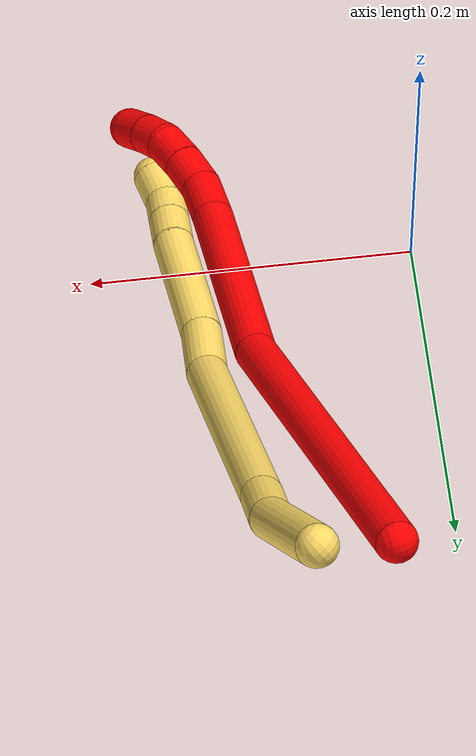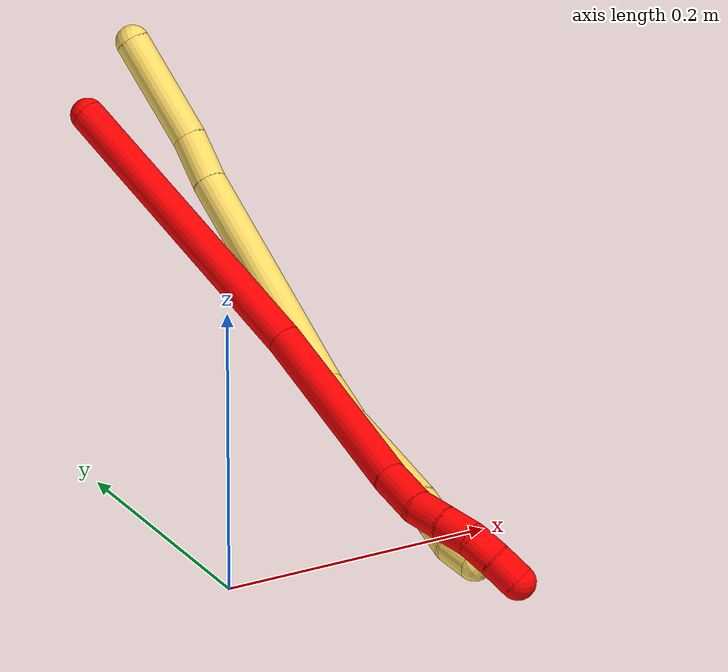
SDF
<sdf version="1.7">
 <world name="default">
  <model name="2">
   <static>0</static>
   <link name="2">
    <collision name="collision-cylinder-e_1_1_4">
     <pose>-0.00589 -0.116989 0.013215 1.45831 -0.049987 -0.04466</pose>
     <geometry><cylinder><radius>0.0125</radius><length>0.235761</length></cylinder></geometry>
     <surface>
      <friction><ode><mu>1.16</mu><mu2>1.16</mu2><slip1>0</slip1><slip2>0</slip2></ode></friction>
      <contact><ode><kp>1e+06</kp><kd>1</kd><max_vel>0</max_vel><min_depth>0.001</min_depth></ode></contact>
     </surface>
    </collision>
    <visual name="visual-cylinder-e_1_1_4">
     <pose>-0.00589 -0.116989 0.013215 1.45831 -0.049987 -0.04466</pose>
     <geometry><cylinder><radius>0.0125</radius><length>0.235761</length></cylinder></geometry>
     <material><ambient>1 0 0 1</ambient></material>
    </visual>
    <collision name="collision-cylinder-e_2_4_5">
     <pose>-0.022386 -0.304439 0.022147 1.63152 -0.149125 -0.158429</pose>
     <geometry><cylinder><radius>0.0125</radius><length>0.142766</length></cylinder></geometry>
     <surface>
      <friction><ode><mu>1.16</mu><mu2>1.16</mu2><slip1>0</slip1><slip2>0</slip2></ode></friction>
      <contact><ode><kp>1e+06</kp><kd>1</kd><max_vel>0</max_vel><min_depth>0.001</min_depth></ode></contact>
     </surface>
    </collision>
    <visual name="visual-cylinder-e_2_4_5">
     <pose>-0.022386 -0.304439 0.022147 1.63152 -0.149125 -0.158429</pose>
     <geometry><cylinder><radius>0.0125</radius><length>0.142766</length></cylinder></geometry>
     <material><ambient>1 0 0 1</ambient></material>
    </visual>
    <collision name="collision-cylinder-e_3_5_6">
     <pose>-0.03647 -0.39064 0.017631 1.58551 -0.217494 -0.220693</pose>
     <geometry><cylinder><radius>0.0125</radius><length>0.032244</length></cylinder></geometry>
     <surface>
      <friction><ode><mu>1.16</mu><mu2>1.16</mu2><slip1>0</slip1><slip2>0</slip2></ode></friction>
      <contact><ode><kp>1e+06</kp><kd>1</kd><max_vel>0</max_vel><min_depth>0.001</min_depth></ode></contact>
     </surface>
    </collision>
    <visual name="visual-cylinder-e_3_5_6">
     <pose>-0.03647 -0.39064 0.017631 1.58551 -0.217494 -0.220693</pose>
     <geometry><cylinder><radius>0.0125</radius><length>0.032244</length></cylinder></geometry>
     <material><ambient>1 0 0 1</ambient></material>
    </visual>
    <collision name="collision-cylinder-e_4_6_7">
     <pose>-0.044038 -0.417342 0.019831 1.35249 -0.349249 -0.281278</pose>
     <geometry><cylinder><radius>0.0125</radius><length>0.023898</length></cylinder></geometry>
     <surface>
      <friction><ode><mu>1.16</mu><mu2>1.16</mu2><slip1>0</slip1><slip2>0</slip2></ode></friction>
      <contact><ode><kp>1e+06</kp><kd>1</kd><max_vel>0</max_vel><min_depth>0.001</min_depth></ode></contact>
     </surface>
    </collision>
    <visual name="visual-cylinder-e_4_6_7">
     <pose>-0.044038 -0.417342 0.019831 1.35249 -0.349249 -0.281278</pose>
     <geometry><cylinder><radius>0.0125</radius><length>0.023898</length></cylinder></geometry>
     <material><ambient>1 0 0 1</ambient></material>
    </visual>
    <collision name="collision-cylinder-e_5_7_8">
     <pose>-0.051364 -0.438868 0.025343 1.28714 -0.286072 -0.215226</pose>
     <geometry><cylinder><radius>0.0125</radius><length>0.022941</length></cylinder></geometry>
     <surface>
      <friction><ode><mu>1.16</mu><mu2>1.16</mu2><slip1>0</slip1><slip2>0</slip2></ode></friction>
      <contact><ode><kp>1e+06</kp><kd>1</kd><max_vel>0</max_vel><min_depth>0.001</min_depth></ode></contact>
     </surface>
    </collision>
    <visual name="visual-cylinder-e_5_7_8">
     <pose>-0.051364 -0.438868 0.025343 1.28714 -0.286072 -0.215226</pose>
     <geometry><cylinder><radius>0.0125</radius><length>0.022941</length></cylinder></geometry>
     <material><ambient>1 0 0 1</ambient></material>
    </visual>
    <collision name="collision-cylinder-e_6_8_9">
     <pose>-0.054424 -0.459114 0.032149 1.20335 0.017048 0.011705</pose>
     <geometry><cylinder><radius>0.0125</radius><length>0.020751</length></cylinder></geometry>
     <surface>
      <friction><ode><mu>1.16</mu><mu2>1.16</mu2><slip1>0</slip1><slip2>0</slip2></ode></friction>
      <contact><ode><kp>1e+06</kp><kd>1</kd><max_vel>0</max_vel><min_depth>0.001</min_depth></ode></contact>
     </surface>
    </collision>
    <visual name="visual-cylinder-e_6_8_9">
     <pose>-0.054424 -0.459114 0.032149 1.20335 0.017048 0.011705</pose>
     <geometry><cylinder><radius>0.0125</radius><length>0.020751</length></cylinder></geometry>
     <material><ambient>1 0 0 1</ambient></material>
    </visual>
    <collision name="collision-cylinder-e_7_9_2">
     <pose>-0.053121 -0.47876 0.039938 1.18373 0.104206 0.070089</pose>
     <geometry><cylinder><radius>0.0125</radius><length>0.021639</length></cylinder></geometry>
     <surface>
      <friction><ode><mu>1.16</mu><mu2>1.16</mu2><slip1>0</slip1><slip2>0</slip2></ode></friction>
      <contact><ode><kp>1e+06</kp><kd>1</kd><max_vel>0</max_vel><min_depth>0.001</min_depth></ode></contact>
     </surface>
    </collision>
    <visual name="visual-cylinder-e_7_9_2">
     <pose>-0.053121 -0.47876 0.039938 1.18373 0.104206 0.070089</pose>
     <geometry><cylinder><radius>0.0125</radius><length>0.021639</length></cylinder></geometry>
     <material><ambient>1 0 0 1</ambient></material>
    </visual>
    <collision name="collision-sphere-2">
     <pose>-0.051996 -0.488725 0.043999 0 -0 0</pose>
     <geometry><sphere><radius>0.0125</radius></sphere></geometry>
     <surface>
      <friction><ode><mu>1.16</mu><mu2>1.16</mu2><slip1>0</slip1><slip2>0</slip2></ode></friction>
      <contact><ode><kp>1e+06</kp><kd>1</kd><max_vel>0</max_vel><min_depth>0.001</min_depth></ode></contact>
     </surface>
    </collision>
    <visual name="visual-sphere-2">
     <pose>-0.051996 -0.488725 0.043999 0 -0 0</pose>
     <geometry><sphere><radius>0.0125</radius></sphere></geometry>
     <material><ambient>1 0 0 1</ambient></material>
    </visual>
    <collision name="collision-sphere-9">
     <pose>-0.054247 -0.468795 0.035876 0 -0 0</pose>
     <geometry><sphere><radius>0.0125</radius></sphere></geometry>
     <surface>
      <friction><ode><mu>1.16</mu><mu2>1.16</mu2><slip1>0</slip1><slip2>0</slip2></ode></friction>
      <contact><ode><kp>1e+06</kp><kd>1</kd><max_vel>0</max_vel><min_depth>0.001</min_depth></ode></contact>
     </surface>
    </collision>
    <visual name="visual-sphere-9">
     <pose>-0.054247 -0.468795 0.035876 0 -0 0</pose>
     <geometry><sphere><radius>0.0125</radius></sphere></geometry>
     <material><ambient>1 0 0 1</ambient></material>
    </visual>
    <collision name="collision-sphere-4">
     <pose>-0.01178 -0.233978 0.026431 0 -0 0</pose>
     <geometry><sphere><radius>0.0125</radius></sphere></geometry>
     <surface>
      <friction><ode><mu>1.16</mu><mu2>1.16</mu2><slip1>0</slip1><slip2>0</slip2></ode></friction>
      <contact><ode><kp>1e+06</kp><kd>1</kd><max_vel>0</max_vel><min_depth>0.001</min_depth></ode></contact>
     </surface>
    </collision>
    <visual name="visual-sphere-4">
     <pose>-0.01178 -0.233978 0.026431 0 -0 0</pose>
     <geometry><sphere><radius>0.0125</radius></sphere></geometry>
     <material><ambient>1 0 0 1</ambient></material>
    </visual>
    <collision name="collision-sphere-1">
     <geometry><sphere><radius>0.0125</radius></sphere></geometry>
     <surface>
      <friction><ode><mu>1.16</mu><mu2>1.16</mu2><slip1>0</slip1><slip2>0</slip2></ode></friction>
      <contact><ode><kp>1e+06</kp><kd>1</kd><max_vel>0</max_vel><min_depth>0.001</min_depth></ode></contact>
     </surface>
    </collision>
    <visual name="visual-sphere-1">
     <geometry><sphere><radius>0.0125</radius></sphere></geometry>
     <material><ambient>1 0 0 1</ambient></material>
    </visual>
    <collision name="collision-sphere-8">
     <pose>-0.054601 -0.449433 0.028422 0 -0 0</pose>
     <geometry><sphere><radius>0.0125</radius></sphere></geometry>
     <surface>
      <friction><ode><mu>1.16</mu><mu2>1.16</mu2><slip1>0</slip1><slip2>0</slip2></ode></friction>
      <contact><ode><kp>1e+06</kp><kd>1</kd><max_vel>0</max_vel><min_depth>0.001</min_depth></ode></contact>
     </surface>
    </collision>
    <visual name="visual-sphere-8">
     <pose>-0.054601 -0.449433 0.028422 0 -0 0</pose>
     <geometry><sphere><radius>0.0125</radius></sphere></geometry>
     <material><ambient>1 0 0 1</ambient></material>
    </visual>
    <collision name="collision-sphere-5">
     <pose>-0.032991 -0.3749 0.017863 0 -0 0</pose>
     <geometry><sphere><radius>0.0125</radius></sphere></geometry>
     <surface>
      <friction><ode><mu>1.16</mu><mu2>1.16</mu2><slip1>0</slip1><slip2>0</slip2></ode></friction>
      <contact><ode><kp>1e+06</kp><kd>1</kd><max_vel>0</max_vel><min_depth>0.001</min_depth></ode></contact>
     </surface>
    </collision>
    <visual name="visual-sphere-5">
     <pose>-0.032991 -0.3749 0.017863 0 -0 0</pose>
     <geometry><sphere><radius>0.0125</radius></sphere></geometry>
     <material><ambient>1 0 0 1</ambient></material>
    </visual>
    <collision name="collision-sphere-6">
     <pose>-0.039949 -0.406381 0.0174 0 -0 0</pose>
     <geometry><sphere><radius>0.0125</radius></sphere></geometry>
     <surface>
      <friction><ode><mu>1.16</mu><mu2>1.16</mu2><slip1>0</slip1><slip2>0</slip2></ode></friction>
      <contact><ode><kp>1e+06</kp><kd>1</kd><max_vel>0</max_vel><min_depth>0.001</min_depth></ode></contact>
     </surface>
    </collision>
    <visual name="visual-sphere-6">
     <pose>-0.039949 -0.406381 0.0174 0 -0 0</pose>
     <geometry><sphere><radius>0.0125</radius></sphere></geometry>
     <material><ambient>1 0 0 1</ambient></material>
    </visual>
    <collision name="collision-sphere-7">
     <pose>-0.048127 -0.428303 0.022263 0 -0 0</pose>
     <geometry><sphere><radius>0.0125</radius></sphere></geometry>
     <surface>
      <friction><ode><mu>1.16</mu><mu2>1.16</mu2><slip1>0</slip1><slip2>0</slip2></ode></friction>
      <contact><ode><kp>1e+06</kp><kd>1</kd><max_vel>0</max_vel><min_depth>0.001</min_depth></ode></contact>
     </surface>
    </collision>
    <visual name="visual-sphere-7">
     <pose>-0.048127 -0.428303 0.022263 0 -0 0</pose>
     <geometry><sphere><radius>0.0125</radius></sphere></geometry>
     <material><ambient>1 0 0 1</ambient></material>
    </visual>
    <inertial>
     <pose>-0.02054 -0.247139 0.018865 0 -0 0</pose>
     <mass>0.5</mass>
     <inertia><ixx>0.001258</ixx><ixy>0</ixy><ixz>0</ixz><iyy>-8e-06</iyy><iyz>0</iyz><izz>0.001446</izz></inertia>
    </inertial>
   </link>
   <pose>0.058996 0.325946 0.228354 1.6782 1.01013 1.82916</pose>
  </model>
  <model name="5">
   <static>0</static>
   <link name="5">
    <collision name="collision-cylinder-e_1_1_4">
     <pose>0.003354 -0.041483 -0.000831 1.59082 0.080664 0.082294</pose>
     <geometry><cylinder><radius>0.0125</radius><length>0.083254</length></cylinder></geometry>
     <surface>
      <friction><ode><mu>1.16</mu><mu2>1.16</mu2><slip1>0</slip1><slip2>0</slip2></ode></friction>
      <contact><ode><kp>1e+06</kp><kd>1</kd><max_vel>0</max_vel><min_depth>0.001</min_depth></ode></contact>
     </surface>
    </collision>
    <visual name="visual-cylinder-e_1_1_4">
     <pose>0.003354 -0.041483 -0.000831 1.59082 0.080664 0.082294</pose>
     <geometry><cylinder><radius>0.0125</radius><length>0.083254</length></cylinder></geometry>
     <material><ambient>1 0.858824 0.4 1</ambient></material>
    </visual>
    <collision name="collision-cylinder-e_2_4_5">
     <pose>0.012533 -0.101236 -0.001806 1.57869 0.308611 0.311019</pose>
     <geometry><cylinder><radius>0.0125</radius><length>0.038351</length></cylinder></geometry>
     <surface>
      <friction><ode><mu>1.16</mu><mu2>1.16</mu2><slip1>0</slip1><slip2>0</slip2></ode></friction>
      <contact><ode><kp>1e+06</kp><kd>1</kd><max_vel>0</max_vel><min_depth>0.001</min_depth></ode></contact>
     </surface>
    </collision>
    <visual name="visual-cylinder-e_2_4_5">
     <pose>0.012533 -0.101236 -0.001806 1.57869 0.308611 0.311019</pose>
     <geometry><cylinder><radius>0.0125</radius><length>0.038351</length></cylinder></geometry>
     <material><ambient>1 0.858824 0.4 1</ambient></material>
    </visual>
    <collision name="collision-cylinder-e_3_5_6">
     <pose>0.047314 -0.205442 -0.011786 1.68476 0.323048 0.361332</pose>
     <geometry><cylinder><radius>0.0125</radius><length>0.182433</length></cylinder></geometry>
     <surface>
      <friction><ode><mu>1.16</mu><mu2>1.16</mu2><slip1>0</slip1><slip2>0</slip2></ode></friction>
      <contact><ode><kp>1e+06</kp><kd>1</kd><max_vel>0</max_vel><min_depth>0.001</min_depth></ode></contact>
     </surface>
    </collision>
    <visual name="visual-cylinder-e_3_5_6">
     <pose>0.047314 -0.205442 -0.011786 1.68476 0.323048 0.361332</pose>
     <geometry><cylinder><radius>0.0125</radius><length>0.182433</length></cylinder></geometry>
     <material><ambient>1 0.858824 0.4 1</ambient></material>
    </visual>
    <collision name="collision-cylinder-e_4_6_7">
     <pose>0.086539 -0.307754 -0.026467 1.85846 0.541343 0.711342</pose>
     <geometry><cylinder><radius>0.0125</radius><length>0.039853</length></cylinder></geometry>
     <surface>
      <friction><ode><mu>1.16</mu><mu2>1.16</mu2><slip1>0</slip1><slip2>0</slip2></ode></friction>
      <contact><ode><kp>1e+06</kp><kd>1</kd><max_vel>0</max_vel><min_depth>0.001</min_depth></ode></contact>
     </surface>
    </collision>
    <visual name="visual-cylinder-e_4_6_7">
     <pose>0.086539 -0.307754 -0.026467 1.85846 0.541343 0.711342</pose>
     <geometry><cylinder><radius>0.0125</radius><length>0.039853</length></cylinder></geometry>
     <material><ambient>1 0.858824 0.4 1</ambient></material>
    </visual>
    <collision name="collision-cylinder-e_5_7_8">
     <pose>0.116722 -0.360058 -0.046563 1.97221 0.471794 0.696696</pose>
     <geometry><cylinder><radius>0.0125</radius><length>0.087637</length></cylinder></geometry>
     <surface>
      <friction><ode><mu>1.16</mu><mu2>1.16</mu2><slip1>0</slip1><slip2>0</slip2></ode></friction>
      <contact><ode><kp>1e+06</kp><kd>1</kd><max_vel>0</max_vel><min_depth>0.001</min_depth></ode></contact>
     </surface>
    </collision>
    <visual name="visual-cylinder-e_5_7_8">
     <pose>0.116722 -0.360058 -0.046563 1.97221 0.471794 0.696696</pose>
     <geometry><cylinder><radius>0.0125</radius><length>0.087637</length></cylinder></geometry>
     <material><ambient>1 0.858824 0.4 1</ambient></material>
    </visual>
    <collision name="collision-cylinder-e_6_8_9">
     <pose>0.142657 -0.406108 -0.064973 1.8734 0.516391 0.689533</pose>
     <geometry><cylinder><radius>0.0125</radius><length>0.024385</length></cylinder></geometry>
     <surface>
      <friction><ode><mu>1.16</mu><mu2>1.16</mu2><slip1>0</slip1><slip2>0</slip2></ode></friction>
      <contact><ode><kp>1e+06</kp><kd>1</kd><max_vel>0</max_vel><min_depth>0.001</min_depth></ode></contact>
     </surface>
    </collision>
    <visual name="visual-cylinder-e_6_8_9">
     <pose>0.142657 -0.406108 -0.064973 1.8734 0.516391 0.689533</pose>
     <geometry><cylinder><radius>0.0125</radius><length>0.024385</length></cylinder></geometry>
     <material><ambient>1 0.858824 0.4 1</ambient></material>
    </visual>
    <collision name="collision-cylinder-e_7_9_10">
     <pose>0.153679 -0.424634 -0.070752 1.87288 0.516654 0.68952</pose>
     <geometry><cylinder><radius>0.0125</radius><length>0.020252</length></cylinder></geometry>
     <surface>
      <friction><ode><mu>1.16</mu><mu2>1.16</mu2><slip1>0</slip1><slip2>0</slip2></ode></friction>
      <contact><ode><kp>1e+06</kp><kd>1</kd><max_vel>0</max_vel><min_depth>0.001</min_depth></ode></contact>
     </surface>
    </collision>
    <visual name="visual-cylinder-e_7_9_10">
     <pose>0.153679 -0.424634 -0.070752 1.87288 0.516654 0.68952</pose>
     <geometry><cylinder><radius>0.0125</radius><length>0.020252</length></cylinder></geometry>
     <material><ambient>1 0.858824 0.4 1</ambient></material>
    </visual>
    <collision name="collision-cylinder-e_8_10_2">
     <pose>0.163363 -0.442295 -0.079241 2.136 0.403734 0.712526</pose>
     <geometry><cylinder><radius>0.0125</radius><length>0.023836</length></cylinder></geometry>
     <surface>
      <friction><ode><mu>1.16</mu><mu2>1.16</mu2><slip1>0</slip1><slip2>0</slip2></ode></friction>
      <contact><ode><kp>1e+06</kp><kd>1</kd><max_vel>0</max_vel><min_depth>0.001</min_depth></ode></contact>
     </surface>
    </collision>
    <visual name="visual-cylinder-e_8_10_2">
     <pose>0.163363 -0.442295 -0.079241 2.136 0.403734 0.712526</pose>
     <geometry><cylinder><radius>0.0125</radius><length>0.023836</length></cylinder></geometry>
     <material><ambient>1 0.858824 0.4 1</ambient></material>
    </visual>
    <collision name="collision-sphere-2">
     <pose>0.168045 -0.451551 -0.085111 0 -0 0</pose>
     <geometry><sphere><radius>0.0125</radius></sphere></geometry>
     <surface>
      <friction><ode><mu>1.16</mu><mu2>1.16</mu2><slip1>0</slip1><slip2>0</slip2></ode></friction>
      <contact><ode><kp>1e+06</kp><kd>1</kd><max_vel>0</max_vel><min_depth>0.001</min_depth></ode></contact>
     </surface>
    </collision>
    <visual name="visual-sphere-2">
     <pose>0.168045 -0.451551 -0.085111 0 -0 0</pose>
     <geometry><sphere><radius>0.0125</radius></sphere></geometry>
     <material><ambient>1 0.858824 0.4 1</ambient></material>
    </visual>
    <collision name="collision-sphere-10">
     <pose>0.15868 -0.43304 -0.073371 0 -0 0</pose>
     <geometry><sphere><radius>0.0125</radius></sphere></geometry>
     <surface>
      <friction><ode><mu>1.16</mu><mu2>1.16</mu2><slip1>0</slip1><slip2>0</slip2></ode></friction>
      <contact><ode><kp>1e+06</kp><kd>1</kd><max_vel>0</max_vel><min_depth>0.001</min_depth></ode></contact>
     </surface>
    </collision>
    <visual name="visual-sphere-10">
     <pose>0.15868 -0.43304 -0.073371 0 -0 0</pose>
     <geometry><sphere><radius>0.0125</radius></sphere></geometry>
     <material><ambient>1 0.858824 0.4 1</ambient></material>
    </visual>
    <collision name="collision-sphere-9">
     <pose>0.148677 -0.416229 -0.068132 0 -0 0</pose>
     <geometry><sphere><radius>0.0125</radius></sphere></geometry>
     <surface>
      <friction><ode><mu>1.16</mu><mu2>1.16</mu2><slip1>0</slip1><slip2>0</slip2></ode></friction>
      <contact><ode><kp>1e+06</kp><kd>1</kd><max_vel>0</max_vel><min_depth>0.001</min_depth></ode></contact>
     </surface>
    </collision>
    <visual name="visual-sphere-9">
     <pose>0.148677 -0.416229 -0.068132 0 -0 0</pose>
     <geometry><sphere><radius>0.0125</radius></sphere></geometry>
     <material><ambient>1 0.858824 0.4 1</ambient></material>
    </visual>
    <collision name="collision-sphere-4">
     <pose>0.006708 -0.082966 -0.001661 0 -0 0</pose>
     <geometry><sphere><radius>0.0125</radius></sphere></geometry>
     <surface>
      <friction><ode><mu>1.16</mu><mu2>1.16</mu2><slip1>0</slip1><slip2>0</slip2></ode></friction>
      <contact><ode><kp>1e+06</kp><kd>1</kd><max_vel>0</max_vel><min_depth>0.001</min_depth></ode></contact>
     </surface>
    </collision>
    <visual name="visual-sphere-4">
     <pose>0.006708 -0.082966 -0.001661 0 -0 0</pose>
     <geometry><sphere><radius>0.0125</radius></sphere></geometry>
     <material><ambient>1 0.858824 0.4 1</ambient></material>
    </visual>
    <collision name="collision-sphere-1">
     <geometry><sphere><radius>0.0125</radius></sphere></geometry>
     <surface>
      <friction><ode><mu>1.16</mu><mu2>1.16</mu2><slip1>0</slip1><slip2>0</slip2></ode></friction>
      <contact><ode><kp>1e+06</kp><kd>1</kd><max_vel>0</max_vel><min_depth>0.001</min_depth></ode></contact>
     </surface>
    </collision>
    <visual name="visual-sphere-1">
     <geometry><sphere><radius>0.0125</radius></sphere></geometry>
     <material><ambient>1 0.858824 0.4 1</ambient></material>
    </visual>
    <collision name="collision-sphere-8">
     <pose>0.136637 -0.395987 -0.061813 0 -0 0</pose>
     <geometry><sphere><radius>0.0125</radius></sphere></geometry>
     <surface>
      <friction><ode><mu>1.16</mu><mu2>1.16</mu2><slip1>0</slip1><slip2>0</slip2></ode></friction>
      <contact><ode><kp>1e+06</kp><kd>1</kd><max_vel>0</max_vel><min_depth>0.001</min_depth></ode></contact>
     </surface>
    </collision>
    <visual name="visual-sphere-8">
     <pose>0.136637 -0.395987 -0.061813 0 -0 0</pose>
     <geometry><sphere><radius>0.0125</radius></sphere></geometry>
     <material><ambient>1 0.858824 0.4 1</ambient></material>
    </visual>
    <collision name="collision-sphere-5">
     <pose>0.018357 -0.119505 -0.00195 0 -0 0</pose>
     <geometry><sphere><radius>0.0125</radius></sphere></geometry>
     <surface>
      <friction><ode><mu>1.16</mu><mu2>1.16</mu2><slip1>0</slip1><slip2>0</slip2></ode></friction>
      <contact><ode><kp>1e+06</kp><kd>1</kd><max_vel>0</max_vel><min_depth>0.001</min_depth></ode></contact>
     </surface>
    </collision>
    <visual name="visual-sphere-5">
     <pose>0.018357 -0.119505 -0.00195 0 -0 0</pose>
     <geometry><sphere><radius>0.0125</radius></sphere></geometry>
     <material><ambient>1 0.858824 0.4 1</ambient></material>
    </visual>
    <collision name="collision-sphere-6">
     <pose>0.076272 -0.291379 -0.021622 0 -0 0</pose>
     <geometry><sphere><radius>0.0125</radius></sphere></geometry>
     <surface>
      <friction><ode><mu>1.16</mu><mu2>1.16</mu2><slip1>0</slip1><slip2>0</slip2></ode></friction>
      <contact><ode><kp>1e+06</kp><kd>1</kd><max_vel>0</max_vel><min_depth>0.001</min_depth></ode></contact>
     </surface>
    </collision>
    <visual name="visual-sphere-6">
     <pose>0.076272 -0.291379 -0.021622 0 -0 0</pose>
     <geometry><sphere><radius>0.0125</radius></sphere></geometry>
     <material><ambient>1 0.858824 0.4 1</ambient></material>
    </visual>
    <collision name="collision-sphere-7">
     <pose>0.096807 -0.324129 -0.031312 0 -0 0</pose>
     <geometry><sphere><radius>0.0125</radius></sphere></geometry>
     <surface>
      <friction><ode><mu>1.16</mu><mu2>1.16</mu2><slip1>0</slip1><slip2>0</slip2></ode></friction>
      <contact><ode><kp>1e+06</kp><kd>1</kd><max_vel>0</max_vel><min_depth>0.001</min_depth></ode></contact>
     </surface>
    </collision>
    <visual name="visual-sphere-7">
     <pose>0.096807 -0.324129 -0.031312 0 -0 0</pose>
     <geometry><sphere><radius>0.0125</radius></sphere></geometry>
     <material><ambient>1 0.858824 0.4 1</ambient></material>
    </visual>
    <inertial>
     <pose>0.067109 -0.235359 -0.02466 0 -0 0</pose>
     <mass>0.5</mass>
     <inertia>
      <ixx>0.000793</ixx>
      <ixy>0</ixy>
      <ixz>0</ixz>
      <iyy>0.000185</iyy>
      <iyz>0</iyz>
      <izz>0.000391</izz>
     </inertia>
    </inertial>
   </link>
   <pose>0.106341 0.346415 0.270472 2.24028 -0.215617 -2.44626</pose>
  </model>
 </world>
</sdf>
